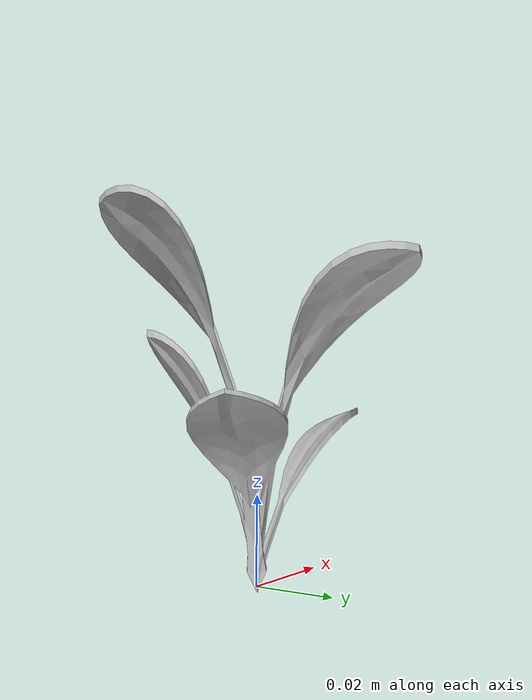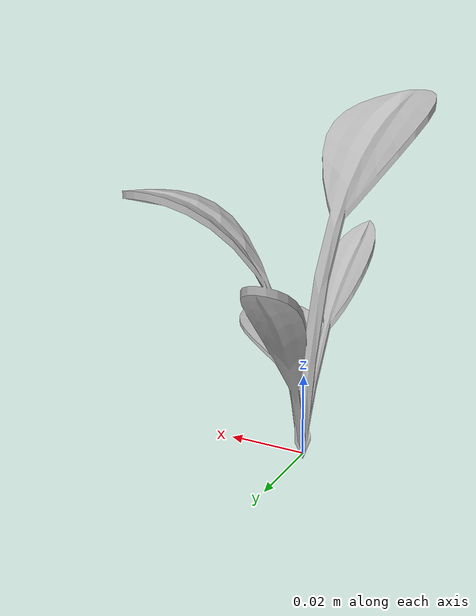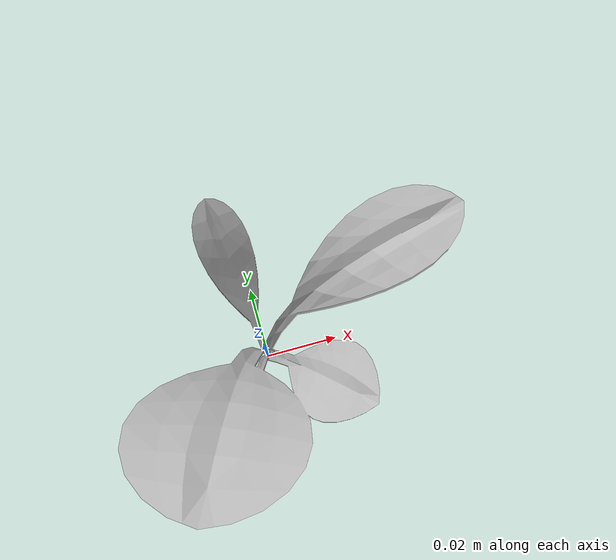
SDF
<sdf version="1.6">
  <model name="sugar_beet_41">
    <static>true</static>
    <link name="body">
      <visual name="visual">
        <geometry>
          <mesh>
            <uri>file:///sugar_beet_41/media/sugar_beet.dae</uri>
          </mesh>
        </geometry>
      </visual>
    </link>
  </model>
</sdf>
